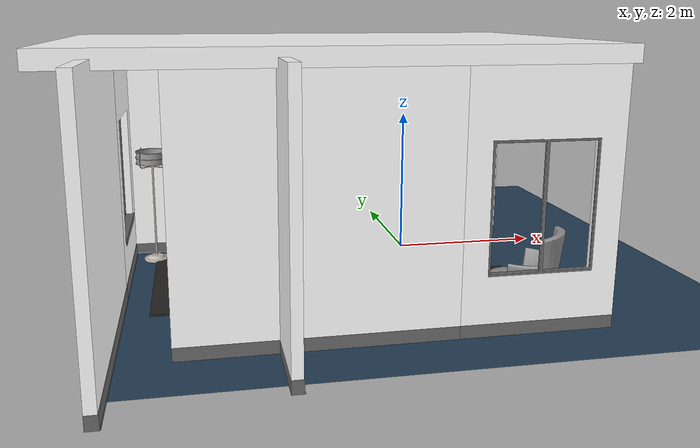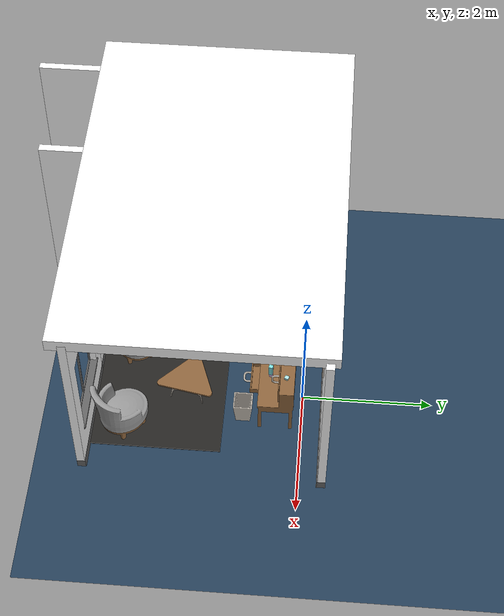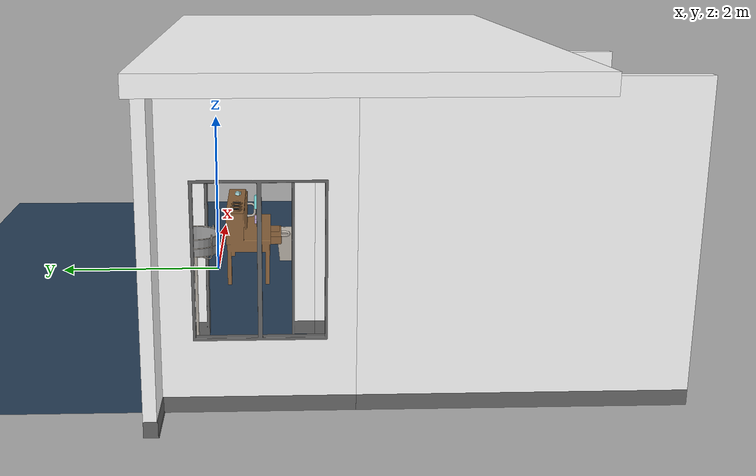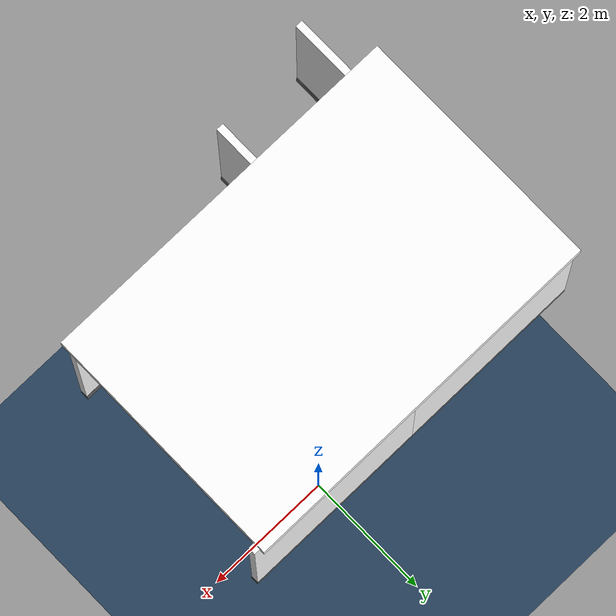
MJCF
<mujoco model="Playground">
    <compiler angle="radian" />
    <option timestep="0.001" noslip_iterations="20" />
    <size njmax="500" nconmax="500" nkey="2" />
    <visual>
        <global offwidth="4072" offheight="2262" />
        <quality shadowsize="2048" offsamples="8" />
        <headlight diffuse="0.6 0.6 0.6" specular="0 0 0" />
        <map fogstart="6" znear="0.05" />
        <scale forcewidth="0.01" framelength="0.1" framewidth="0.01" />
    </visual>
    <default class="main">
        <default class="viz_stl_Metal_LR">
            <geom type="mesh" group="1" material="M_Metal_LR" />
        </default>
        <default class="viz_stl_Wood_cube_LR">
            <geom type="mesh" group="1" material="M_Wood_cube_LR" />
        </default>
        <default class="viz_stl_Wood_2d_LR">
            <geom type="mesh" group="1" material="M_Wood_2d_LR" />
        </default>
        <default class="viz_stl_Fabric_cube_LR">
            <geom type="mesh" group="1" material="M_Fabric_cube_LR" />
        </default>
        <default class="viz_stl_Fabric_2d_LR">
            <geom type="mesh" group="1" material="M_Fabric_2d_LR" />
        </default>
        <default class="viz_stl_Painting_cube_LR">
            <geom type="mesh" group="1" material="M_Painting_cube_LR" />
        </default>
        <default class="viz_drawer">
            <joint limited="true" armature="0.1" damping="2" frictionloss="5" />
            <geom contype="0" group="3" rgba="1 0 0 1" />
        </default>
        <default class="viz_body">
            <joint limited="true" armature="0.01" damping="1" frictionloss="0.5" />
            <geom contype="0" group="4" rgba="0 1 0 1" />
        </default>
    </default>
    <asset>
        <texture type="cube" name="T_Wood_cube_LR" file="../playroom/textures/Surface_wood_chipboard.jpg.png" />
        <texture type="2d" name="T_Wood_2d_LR" file="../playroom/textures/Surface_wood_chipboard.jpg.png" />
        <texture type="cube" name="T_Metal_LR" file="../playroom/textures/Texture_P7220210.JPG.png" />
        <texture type="cube" name="T_Fabric_cube_LR" file="../playroom/textures/Blue_Gray_knit_texture.jpg.png" />
        <texture type="2d" name="T_Fabric_2d_LR" file="../playroom/textures/Fabric_length_(AM_842431-1).jpg.png" />
        <texture type="cube" name="T_Painting_cube_LR" file="../playroom/textures/Coloured,_textured_craft_card_edit.jpg.png" />
        <texture type="2d" name="groundplane" builtin="checker" rgb1="0.2 0.3 0.4" rgb2="0.1 0.2 0.3" width="200" height="200" />
        <texture type="skybox" name="skybox" builtin="gradient" mark="random" rgb1="0.4 0.6 0.8" rgb2="0 0 0" markrgb="1 1 1" width="800" height="4800" />
        <material name="M_Fabric_cube_LR" texture="T_Fabric_cube_LR" shininess="0" />
        <material name="M_Fabric_2d_LR" texture="T_Fabric_2d_LR" texuniform="true" texrepeat="3 3" shininess="0" rgba="0.2 0.2 0.2 1" />
        <material name="groundplane" texture="groundplane" texrepeat="20 20" />
        <material name="M_Wood_cube_LR" texture="T_Wood_cube_LR" shininess="0.2" reflectance="0.3" rgba="0.8 0.8 0.8 1" />
        <material name="M_Wood_2d_LR" texture="T_Wood_2d_LR" shininess="0.2" reflectance="0.3" rgba="0.8 0.8 0.8 1" />
        <material name="M_Metal_LR" texture="T_Metal_LR" texrepeat="3 3" reflectance="0.7" />
        <material name="M_Painting_cube_LR" texture="T_Painting_cube_LR" shininess="0.2" reflectance="0.3" />
        <material name="MatViz" specular="1" shininess="0.1" reflectance="0.5" rgba="0.07 0.07 0.1 1" />
        <mesh name="SSC_Body" file="../playroom/meshes//SSC_Body.STL" scale="0.01 0.01 0.01" />
        <mesh name="SSC_Stand" file="../playroom/meshes//SSC_Stand.STL" scale="0.01 0.01 0.01" />
        <mesh name="Table_Top" file="../playroom/meshes//Table_Top.STL" scale="0.01 0.01 0.01" />
        <mesh name="Table_Bottom" file="../playroom/meshes//Table_Bottom.STL" scale="0.01 0.01 0.01" />
        <mesh name="Doorway_Top" file="../playroom/meshes//Doorway_Top.STL" scale="0.01 0.01 0.01" />
        <mesh name="Doorway_Bottom" file="../playroom/meshes//Doorway_Bottom.STL" scale="0.01 0.01 0.01" />
        <mesh name="Window_Top" file="../playroom/meshes//Window_Top.STL" scale="0.01 0.01 0.01" />
        <mesh name="Window_Bottom" file="../playroom/meshes//Window_Bottom.STL" scale="0.01 0.01 0.01" />
        <mesh name="Wall_Top" file="../playroom/meshes//Wall_Top.STL" scale="0.01 0.01 0.01" />
        <mesh name="Wall_Bottom" file="../playroom/meshes//Wall_Bottom.STL" scale="0.01 0.01 0.01" />
        <mesh name="Lamp_Top" file="../playroom/meshes//Lamp_Top.STL" scale="0.01 0.01 0.01" />
        <mesh name="Lamp_Stand" file="../playroom/meshes//Lamp_Stand.STL" scale="0.01 0.01 0.01" />
        <mesh name="Painting_Canvas" file="../playroom/meshes//Painting_Canvas.STL" scale="0.01 0.01 0.01" />
        <mesh name="Painting_Frame" file="../playroom/meshes//Painting_Frame.STL" scale="0.01 0.01 0.01" />
        <mesh name="StudyTable" file="../playroom/meshes//StudyTable.STL" scale="0.01 0.01 0.01" />
        <mesh name="Drawer_Wood" file="../playroom/meshes//Drawer_Wood.STL" scale="0.01 0.01 0.01" />
        <mesh name="Drawer_Handle" file="../playroom/meshes//Drawer_Handle.STL" scale="0.01 0.01 0.01" />
        <mesh name="Slide_Wood" file="../playroom/meshes//Slide_Wood.STL" scale="0.01 0.01 0.01" />
        <mesh name="Slide_Handle" file="../playroom/meshes//Slide_Handle.STL" scale="0.01 0.01 0.01" />
        <mesh name="BlockBin" file="../playroom/meshes//BlockBin.STL" scale="0.01 0.01 0.01" />
    </asset>
    <worldbody>
        <geom size="4 4 0.25" type="plane" material="groundplane" />
        <light class="Light" pos="0.4 -1 2.8" dir="-0.125491 0.313728 -0.941184" />
        <light class="Light" pos="-1.7 -2.8 2" dir="0 0 -1" />
        <light class="Light" pos="-3.6 0 2" dir="0 0 -1" />
        <light class="Light" pos="0 0 0" dir="0.705346 -0.0705346 -0.705346" />
        <light class="Light" pos="0 0 2.8" dir="0 -0.707107 -0.707107" />
        <body name="SSC_01" pos="0.7 -2.7 0.02" quat="-0.416147 0 0 0.909297">
            <inertial pos="-1.69568e-05 0.102849 0.460734" quat="0.665175 -0.239795 0.239645 0.66529" mass="255.007" diaginertia="25.2596 22.2539 12.2075" />
            <geom class="viz_stl_Fabric_cube_LR" contype="0" conaffinity="0" mesh="SSC_Body" />
            <geom class="viz_stl_Wood_cube_LR" contype="0" conaffinity="0" mesh="SSC_Stand" />
        </body>
        <body name="SSC_02" pos="-0.7 -2.7 0.02" quat="0.540302 0 0 0.841471">
            <inertial pos="-1.69568e-05 0.102849 0.460734" quat="0.665175 -0.239795 0.239645 0.66529" mass="255.007" diaginertia="25.2596 22.2539 12.2075" />
            <geom class="viz_stl_Fabric_cube_LR" contype="0" conaffinity="0" mesh="SSC_Body" />
            <geom class="viz_stl_Wood_cube_LR" contype="0" conaffinity="0" mesh="SSC_Stand" />
        </body>
        <body name="Table" pos="0.1 -1.85 0.02" quat="-0.801144 0 0 0.598472">
            <inertial pos="-0.0771861 6.57209e-05 0.268149" quat="0.0822003 0.714375 -0.0781205 0.690514" mass="74.2001" diaginertia="2.9359 2.61546 2.24078" />
            <geom class="viz_stl_Wood_2d_LR" contype="0" conaffinity="0" mesh="Table_Top" />
            <geom class="viz_stl_Metal_LR" contype="0" conaffinity="0" mesh="Table_Bottom" />
        </body>
        <body name="Wall_01" pos="1.6 0.3 0">
            <inertial pos="-1.524 0.0597068 1.72544" quat="0.500185 0.499815 0.500185 0.499815" mass="1066.43" diaginertia="1605.4 905.276 702.954" />
            <geom type="mesh" contype="0" conaffinity="0" group="1" rgba="1 1 1 1" mesh="Wall_Top" />
            <geom type="mesh" contype="0" conaffinity="0" group="1" rgba="0.4 0.4 0.4 1" mesh="Wall_Bottom" />
        </body>
        <body name="Window_03" pos="-0.27 -3.2 0" quat="0.000296327 0 0 1">
            <inertial pos="-0.888568 0.0609232 1.3669" quat="0.707098 -0.00125646 0.00119453 0.707113" mass="894.917" diaginertia="996.607 768.536 230.185" />
            <geom type="mesh" contype="0" conaffinity="0" group="1" rgba="1 1 1 1" mesh="Window_Top" />
            <geom type="mesh" contype="0" conaffinity="0" group="1" rgba="0.4 0.4 0.4 1" mesh="Window_Bottom" />
        </body>
        <body name="Wall_02" pos="-3.318 -3.2 0" quat="0.000296327 0 0 1">
            <inertial pos="-1.524 0.0597068 1.72544" quat="0.500185 0.499815 0.500185 0.499815" mass="1066.43" diaginertia="1605.4 905.276 702.954" />
            <geom type="mesh" contype="0" conaffinity="0" group="1" rgba="1 1 1 1" mesh="Wall_Top" />
            <geom type="mesh" contype="0" conaffinity="0" group="1" rgba="0.4 0.4 0.4 1" mesh="Wall_Bottom" />
        </body>
        <body name="Wall_03" pos="-1.447 0.3 0">
            <inertial pos="-1.524 0.0597068 1.72544" quat="0.500185 0.499815 0.500185 0.499815" mass="1066.43" diaginertia="1605.4 905.276 702.954" />
            <geom type="mesh" contype="0" conaffinity="0" group="1" rgba="1 1 1 1" mesh="Wall_Top" />
            <geom type="mesh" contype="0" conaffinity="0" group="1" rgba="0.4 0.4 0.4 1" mesh="Wall_Bottom" />
        </body>
        <body name="Doorway_01" pos="-2.1 0.3 0" quat="0.707035 0 0 0.707179">
            <inertial pos="-0.761487 0.0559083 1.67853" quat="0.707106 -0.00122681 0.00122681 0.707106" mass="803.811" diaginertia="634.086 474.182 161.903" />
            <geom type="mesh" contype="0" conaffinity="0" group="1" rgba="1 1 1 1" mesh="Doorway_Top" />
            <geom type="mesh" contype="0" conaffinity="0" group="1" rgba="0.4 0.4 0.4 1" mesh="Doorway_Bottom" />
        </body>
        <body name="Wall_04" pos="-2.1 -1.15 0" quat="0.707035 0 0 0.707179">
            <inertial pos="-1.524 0.0597068 1.72544" quat="0.500185 0.499815 0.500185 0.499815" mass="1066.43" diaginertia="1605.4 905.276 702.954" />
            <geom type="mesh" contype="0" conaffinity="0" group="1" rgba="1 1 1 1" mesh="Wall_Top" />
            <geom type="mesh" contype="0" conaffinity="0" group="1" rgba="0.4 0.4 0.4 1" mesh="Wall_Bottom" />
        </body>
        <body name="Window_04" pos="-3.9 0.3 0" quat="0.707035 0 0 0.707179">
            <inertial pos="-0.888568 0.0609232 1.3669" quat="0.707098 -0.00125646 0.00119453 0.707113" mass="894.917" diaginertia="996.607 768.536 230.185" />
            <geom type="mesh" contype="0" conaffinity="0" group="1" rgba="1 1 1 1" mesh="Window_Top" />
            <geom type="mesh" contype="0" conaffinity="0" group="1" rgba="0.4 0.4 0.4 1" mesh="Window_Bottom" />
        </body>
        <body name="Wall_05" pos="-3.9 -1.45 0" quat="0.707035 0 0 0.707179">
            <inertial pos="-1.524 0.0597068 1.72544" quat="0.500185 0.499815 0.500185 0.499815" mass="1066.43" diaginertia="1605.4 905.276 702.954" />
            <geom type="mesh" contype="0" conaffinity="0" group="1" rgba="1 1 1 1" mesh="Wall_Top" />
            <geom type="mesh" contype="0" conaffinity="0" group="1" rgba="0.4 0.4 0.4 1" mesh="Wall_Bottom" />
        </body>
        <body name="Lamp_01" pos="-1.7 -2.8 0">
            <inertial pos="8.37319e-09 5.67069e-08 0.798383" quat="0.707107 0 0 0.707107" mass="221.061" diaginertia="74.0867 74.0867 4.03714" />
            <geom class="viz_stl_Fabric_cube_LR" contype="0" conaffinity="0" mesh="Lamp_Top" />
            <geom class="viz_stl_Metal_LR" contype="0" conaffinity="0" mesh="Lamp_Stand" />
        </body>
        <body name="Lamp_02" pos="-3.6 0 0">
            <inertial pos="8.37319e-09 5.67069e-08 0.798383" quat="0.707107 0 0 0.707107" mass="221.061" diaginertia="74.0867 74.0867 4.03714" />
            <geom class="viz_stl_Fabric_cube_LR" contype="0" conaffinity="0" mesh="Lamp_Top" />
            <geom class="viz_stl_Metal_LR" contype="0" conaffinity="0" mesh="Lamp_Stand" />
        </body>
        <body name="Ceiling" pos="-1.5 -1.5 3.048" quat="0.707035 0 0 0.707179">
            <inertial pos="0 0 0" mass="4800" diaginertia="14416 6416 20800" />
            <geom size="2 3 0.1" type="box" contype="0" conaffinity="0" group="1" rgba="1 1 1 1" />
        </body>
        <body name="Rug_01" pos="0 -2.2 0.01">
            <inertial pos="0 0 0" mass="88" diaginertia="29.3363 35.4963 64.8267" />
            <geom size="1.1 1 0.01" type="box" contype="0" conaffinity="0" group="1" material="M_Fabric_2d_LR" />
        </body>
        <body name="Rug_02" pos="-3 -1 0.01">
            <inertial pos="0 0 0" mass="52.8" diaginertia="21.2978 6.33776 27.632" />
            <geom size="0.6 1.1 0.01" type="box" contype="0" conaffinity="0" group="1" material="M_Fabric_2d_LR" />
        </body>
        <body name="Painting_01" pos="-2.1 -1.9 1.5" quat="-0.707146 0 0 0.707068">
            <inertial pos="2.5287e-10 0.0143313 5.58441e-11" quat="0.5 0.5 0.5 0.5" mass="23.3902" diaginertia="2.21053 1.5358 0.677409" />
            <geom class="viz_stl_Painting_cube_LR" contype="0" conaffinity="0" mesh="Painting_Canvas" />
            <geom class="viz_stl_Metal_LR" contype="0" conaffinity="0" mesh="Painting_Frame" />
        </body>
        <body name="Painting_02" pos="0 0.305 1.5" quat="0.000796327 0 0 1">
            <inertial pos="2.5287e-10 0.0143313 5.58441e-11" quat="0.5 0.5 0.5 0.5" mass="23.3902" diaginertia="2.21053 1.5358 0.677409" />
            <geom class="viz_stl_Painting_cube_LR" contype="0" conaffinity="0" mesh="Painting_Canvas" />
            <geom class="viz_stl_Metal_LR" contype="0" conaffinity="0" mesh="Painting_Frame" />
        </body>
        <body name="obj1" pos="0 -0.5 0.66" quat="0.707388 0 0.706825 0">
            <inertial pos="0 0 0" mass="0.648" diaginertia="0.001944 0.001944 0.0003888" />
            <joint type="free" />
            <geom size="0.03 0.03 0.09" type="box" rgba="0.8 0.7 0.9 1" />
        </body>
        <body name="obj2" pos="0.3 -0.25 0.86" quat="0.980067 0 0 -0.198669">
            <inertial pos="0 0 0" mass="0.648" diaginertia="0.001944 0.001944 0.0003888" />
            <joint type="free" />
            <geom size="0.03 0.03 0.09" type="box" rgba="0.7 0.9 0.9 1" />
        </body>
        <body name="obj3" pos="0.12 -0.5 0.86" quat="0.995004 0 0 -0.0998334">
            <inertial pos="0 0 0" mass="0.648" diaginertia="0.001944 0.001944 0.0003888" />
            <joint type="free" />
            <geom size="0.03 0.03 0.09" type="box" rgba="0.5 0.9 0.9 1" />
        </body>
        <body name="Button 1" pos="0 -0.4 -0.2">
            <inertial pos="-0.15 0.15 0.79" mass="1" diaginertia="0.001 0.001 0.001" />
            <joint name="Button_Joint_1" pos="0 0 0" axis="0 0 1" type="slide" springref="1" limited="true" stiffness="0.5" range="-0.1 0" damping="1" />
            <geom size="0.03 0.02" pos="-0.15 0.15 0.79" type="cylinder" group="1" rgba="0.3 0 0 1" />
        </body>
        <body name="Button SeeSaw 1" pos="0 -0.4 -0.2">
            <inertial pos="-0.15 0.22 0.754" mass="0.01" diaginertia="0.001 0.001 0.001" />
            <joint name="ButtonSeeSaw_Joint_1" pos="-0.15 0.22 0.754" axis="-1 0 0" springref="1" limited="true" stiffness="0.5" range="-0.78 0" damping="0.01" />
            <geom size="0.02 0.075 0.005" pos="-0.15 0.22 0.754" type="box" group="4" rgba="1 0.1 0.1 1" />
        </body>
        <body name="Button Upper 1" pos="0 -0.4 -0.2">
            <inertial pos="-0.15 0.265 0.76" mass="0.1" diaginertia="0.001 0.001 0.001" />
            <joint name="ButtonUpper_Joint_1" pos="0 0 0" axis="0 0 1" type="slide" springref="1" limited="true" range="0 0.017" />
            <geom size="0.02 0.03 0.005" pos="-0.15 0.265 0.79" quat="0.707388 0.706825 0 0" type="box" group="4" rgba="1 0.1 0.1 1" />
            <geom size="0.06 0.0075" pos="-0.15 0.15 1.109" type="cylinder" group="1" rgba="1 0 0 1" />
        </body>
        <body name="Button 2" pos="0 -0.4 -0.2">
            <inertial pos="-0.3 0.15 0.79" mass="1" diaginertia="0.001 0.001 0.001" />
            <joint name="Button_Joint_2" pos="0 0 0" axis="0 0 1" type="slide" springref="1" limited="true" stiffness="0.5" range="-0.1 0" damping="1" />
            <geom size="0.03 0.02" pos="-0.3 0.15 0.79" type="cylinder" group="1" rgba="0 0.3 0 1" />
        </body>
        <body name="Button SeeSaw 2" pos="0 -0.4 -0.2">
            <inertial pos="-0.3 0.22 0.754" mass="0.01" diaginertia="0.001 0.001 0.001" />
            <joint name="ButtonSeeSaw_Joint_2" pos="-0.15 0.22 0.754" axis="-1 0 0" springref="1" limited="true" stiffness="0.5" range="-0.78 0" damping="0.01" />
            <geom size="0.02 0.075 0.005" pos="-0.3 0.22 0.754" type="box" group="4" rgba="0.1 1 0.1 1" />
        </body>
        <body name="Button Upper 2" pos="0 -0.4 -0.2">
            <inertial pos="-0.3 0.265 0.76" mass="0.1" diaginertia="0.001 0.001 0.001" />
            <joint name="ButtonUpper_Joint_2" pos="0 0 0" axis="0 0 1" type="slide" springref="1" limited="true" range="0 0.017" />
            <geom size="0.02 0.03 0.005" pos="-0.3 0.265 0.79" quat="0.707388 0.706825 0 0" type="box" group="4" rgba="0.1 1 0.1 1" />
            <geom size="0.06 0.0075" pos="-0.3 0.15 1.109" type="cylinder" group="1" rgba="0 1 0 1" />
        </body>
        <body name="Button 3" pos="0 -0.4 -0.2">
            <inertial pos="-0.45 0.15 0.79" mass="1" diaginertia="0.001 0.001 0.001" />
            <joint name="Button_Joint_3" pos="0 0 0" axis="0 0 1" type="slide" springref="1" limited="true" stiffness="0.5" range="-0.1 0" damping="1" />
            <geom size="0.03 0.02" pos="-0.45 0.15 0.79" type="cylinder" group="1" rgba="0 0 0.3 1" />
        </body>
        <body name="Button SeeSaw 3" pos="0 -0.4 -0.2">
            <inertial pos="-0.45 0.22 0.754" mass="0.01" diaginertia="0.001 0.001 0.001" />
            <joint name="ButtonSeeSaw_Joint_3" pos="-0.15 0.22 0.754" axis="-1 0 0" springref="1" limited="true" stiffness="0.5" range="-0.78 0" damping="0.01" />
            <geom size="0.02 0.075 0.005" pos="-0.45 0.22 0.754" type="box" group="4" rgba="0.1 0.1 1 1" />
        </body>
        <body name="Button Upper 3" pos="0 -0.4 -0.2">
            <inertial pos="-0.45 0.265 0.76" mass="0.1" diaginertia="0.001 0.001 0.001" />
            <joint name="ButtonUpper_Joint_3" pos="0 0 0" axis="0 0 1" type="slide" springref="1" limited="true" range="0 0.017" />
            <geom size="0.02 0.03 0.005" pos="-0.45 0.265 0.79" quat="0.707388 0.706825 0 0" type="box" group="4" rgba="0.1 0.1 1 1" />
            <geom size="0.06 0.0075" pos="-0.45 0.15 1.109" type="cylinder" group="1" rgba="0 0 1 1" />
        </body>
        <body name="StudyTable" childclass="viz_body" pos="0 -0.4 -0.2">
            <inertial pos="-0.0105241 0.0769411 0.760166" quat="0.584517 0.394281 0.595861 0.384489" mass="554.518" diaginertia="108.365 86.7491 39.9742" />
            <geom class="viz_stl_Wood_cube_LR" quat="0.000563312 -0.000562864 0.706825 0.707388" contype="0" conaffinity="0" mesh="StudyTable" />
            <geom size="0.3 0.275 0.025" pos="0.3 0 0.735" type="box" rgba="0.8 0.9 0.7 1" />
            <geom size="0.17 0.26 0.05" pos="0.42 0 0.66" type="box" rgba="0.8 0.9 0.7 1" />
            <geom size="0.17 0.26 0.05" pos="-0.42 0 0.66" type="box" rgba="0.8 0.9 0.7 1" />
            <geom size="0.025 0.025 0.305" pos="-0.565 0.235 0.305" type="box" rgba="0.8 0.9 0.7 1" />
            <geom size="0.025 0.025 0.305" pos="-0.565 -0.235 0.305" type="box" rgba="0.8 0.9 0.7 1" />
            <geom size="0.025 0.025 0.305" pos="0.565 0.235 0.305" type="box" rgba="0.8 0.9 0.7 1" />
            <geom size="0.025 0.025 0.305" pos="0.565 -0.235 0.305" type="box" rgba="0.8 0.9 0.7 1" />
            <geom size="0.3 0.01 0.175" pos="0.3 0.265 0.935" type="box" rgba="0.8 0.9 0.7 1" />
            <geom size="0.3 0.11 0.01" pos="0.3 0.165 1.1" type="box" rgba="0.8 0.9 0.7 1" />
            <geom size="0.01 0.11 0.175" pos="0.59 0.165 0.935" type="box" rgba="0.8 0.9 0.7 1" />
            <geom size="0.01 0.11 0.175" pos="-0.59 0.165 0.935" type="box" rgba="0.8 0.9 0.7 1" />
            <geom size="0.01 0.11 0.175" pos="0 0.165 0.935" type="box" rgba="0.8 0.9 0.7 1" />
            <geom size="0.3 0.19 0.025" pos="-0.3 -0.085 0.735" type="box" rgba="0.8 0.9 0.7 1" />
            <geom size="0.0525 0.26 0.025" pos="-0.055 0 0.735" type="box" rgba="0.8 0.9 0.7 1" />
            <geom size="0.035 0.26 0.025" pos="-0.225 0 0.735" type="box" rgba="0.8 0.9 0.7 1" />
            <geom size="0.035 0.26 0.025" pos="-0.375 0 0.735" type="box" rgba="0.8 0.9 0.7 1" />
            <geom size="0.0525 0.26 0.025" pos="-0.54 0 0.735" type="box" rgba="0.8 0.9 0.7 1" />
            <geom size="0.06 0.01 0.175" pos="-0.065 0.265 0.935" type="box" rgba="0.8 0.9 0.7 1" />
            <geom size="0.0525 0.01 0.175" pos="-0.22535 0.265 0.935" type="box" rgba="0.8 0.9 0.7 1" />
            <geom size="0.0525 0.01 0.175" pos="-0.375 0.265 0.935" type="box" rgba="0.8 0.9 0.7 1" />
            <geom size="0.06 0.01 0.175" pos="-0.54 0.265 0.935" type="box" rgba="0.8 0.9 0.7 1" />
            <geom size="0.3 0.01 0.135" pos="-0.3 0.265 0.96" type="box" rgba="0.8 0.9 0.7 1" />
            <geom size="0.04 0.11 0.01" pos="-0.0475 0.165 1.1" type="box" rgba="0.8 0.9 0.7 1" />
            <geom size="0.0125 0.11 0.01" pos="-0.225 0.165 1.1" type="box" rgba="0.8 0.9 0.7 1" />
            <geom size="0.0125 0.11 0.01" pos="-0.375 0.165 1.1" type="box" rgba="0.8 0.9 0.7 1" />
            <geom size="0.04 0.11 0.01" pos="-0.555 0.165 1.1" type="box" rgba="0.8 0.9 0.7 1" />
            <geom size="0.3 0.01625 0.01" pos="-0.3 0.07125 1.1" type="box" rgba="0.8 0.9 0.7 1" />
            <geom size="0.3 0.03125 0.01" pos="-0.3 0.2435 1.1" type="box" rgba="0.8 0.9 0.7 1" />
            <geom size="0.06 0.001" pos="-0.15 0.15 1.12" type="cylinder" conaffinity="0" group="1" rgba="0 0 0 1" />
            <geom size="0.06 0.001" pos="-0.3 0.15 1.12" type="cylinder" conaffinity="0" group="1" rgba="0 0 0 1" />
            <geom size="0.06 0.001" pos="-0.45 0.15 1.12" type="cylinder" conaffinity="0" group="1" rgba="0 0 0 1" />
        </body>
        <body name="StudyTable_Drawer" childclass="viz_drawer" pos="0 -0.55 0.455">
            <inertial pos="0 0 0" mass="2" diaginertia="0.001 0.001 0.001" />
            <joint pos="0 0 0" axis="0 1 0" type="slide" range="-0.48 0" />
            <geom class="viz_stl_Wood_cube_LR" quat="0.000563312 -0.000562864 0.706825 0.707388" contype="0" conaffinity="0" mesh="Drawer_Wood" />
            <geom class="viz_stl_Metal_LR" quat="0.000563312 -0.000562864 0.706825 0.707388" contype="0" conaffinity="0" mesh="Drawer_Handle" />
            <geom size="0.24 0.26 0.01" pos="0 0 -0.04" type="box" rgba="0.8 0.9 0.7 1" />
            <geom size="0.24 0.01 0.05" pos="0 0.25 0" type="box" rgba="0.8 0.9 0.7 1" />
            <geom size="0.24 0.01 0.05" pos="0 -0.25 0" type="box" rgba="0.8 0.9 0.7 1" />
            <geom size="0.01 0.26 0.05" pos="-0.23 0 0" type="box" rgba="0.8 0.9 0.7 1" />
            <geom size="0.01 0.26 0.05" pos="0.23 0 0" type="box" rgba="0.8 0.9 0.7 1" />
            <geom size="0.014 0.055" pos="0.08203 -0.315 0.01" quat="0.707388 0.706825 0 0" type="cylinder" rgba="0.8 0.9 0.7 1" />
            <geom size="0.014 0.055" pos="-0.08203 -0.315 0.01" quat="0.707388 0.706825 0 0" type="cylinder" rgba="0.8 0.9 0.7 1" />
            <geom size="0.014 0.095" pos="0 -0.36 0.01" quat="0.707388 0 0.706825 0" type="cylinder" rgba="0.8 0.9 0.7 1" />
            <site name="StudyTable_Drawer" pos="0 0 0" quat="0 0 0 1" size="5e-05" />
        </body>
        <body name="StudyTable_Slide" childclass="viz_drawer" pos="0.2 -0.36 0.735">
            <inertial pos="0 0 0" mass="1" diaginertia="0.001 0.001 0.001" />
            <joint pos="0 0 0" axis="1 0 0" type="slide" range="0 0.6" />
            <geom class="viz_stl_Wood_cube_LR" quat="0.000563312 -0.000562864 0.706825 0.707388" contype="0" conaffinity="0" mesh="Slide_Wood" />
            <geom class="viz_stl_Metal_LR" quat="0.000563312 -0.000562864 0.706825 0.707388" contype="0" conaffinity="0" mesh="Slide_Handle" />
            <geom size="0.3 0.01 0.175" type="box" rgba="0.8 0.9 0.7 1" />
            <geom size="0.014 0.05525" pos="0 -0.065 0.08302" quat="0.707388 0.706825 0 0" type="cylinder" rgba="0.8 0.9 0.7 1" />
            <geom size="0.014 0.05525" pos="0 -0.065 -0.08302" quat="0.707388 0.706825 0 0" type="cylinder" rgba="0.8 0.9 0.7 1" />
            <geom size="0.014 0.095" pos="0 -0.11 0" type="cylinder" rgba="0.8 0.9 0.7 1" />
            <site name="StudyTable_Slide" pos="0 0 0" quat="0 0 0 1" size="5e-05" />
        </body>
        <body name="BlockBin" childclass="viz_body" pos="0.4 -0.9 0">
            <inertial pos="0 0 0" mass="2" diaginertia="0.001 0.001 0.001" />
            <geom class="viz_stl_Metal_LR" quat="0.000563312 -0.000562864 0.706825 0.707388" contype="0" conaffinity="0" mesh="BlockBin" />
            <geom size="0.01 0.11 0.2" pos="-0.12 0 0.2" quat="0.999048 0 -0.0436194 0" type="box" />
            <geom size="0.01 0.11 0.2" pos="0.12 0 0.2" quat="0.999048 0 0.0436194 0" type="box" />
            <geom size="0.01 0.11 0.2" pos="0 -0.12 0.2" quat="0.706715 0.0308559 -0.0308313 0.706152" type="box" />
            <geom size="0.01 0.11 0.2" pos="0 0.12 0.2" quat="0.706715 -0.0308559 0.0308313 0.706152" type="box" />
            <geom size="0.1 0.1 0.005" pos="0 0 0.05" type="box" />
        </body>
    </worldbody>
</mujoco>
